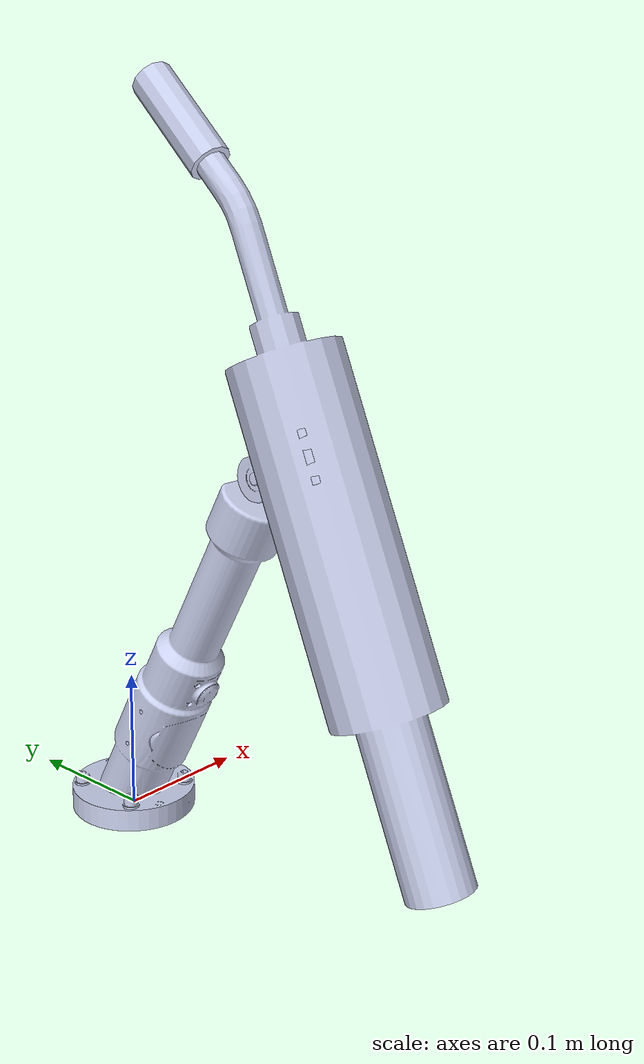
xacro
<?xml version="1.0" ?>
<robot name="$(arg name)" xmlns:xacro="http://ros.org/wiki/xacro">

    <!-- import macros -->
    <xacro:include filename="$(find alpaka_welding_gun_description)/urdf/welding_gun_macro.xacro"/>

    <!-- robot name parameter -->
    <xacro:arg name="name" default="welding_gun"/>

    <!-- parameters -->
    <xacro:arg name="prefix" default="" />
    <xacro:arg name="clamp_angle" default="0" />
    <xacro:arg name="tourch_tilt" default="0" />

    <!-- create base link -->
    <link name="base_link"/>

    <!-- chassis -->
    <xacro:welding_gun prefix="$(arg prefix)" parent="base_link" clamp_angle="$(arg clamp_angle)" tourch_tilt="$(arg tourch_tilt)"/>

</robot>

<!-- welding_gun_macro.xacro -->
<robot xmlns:xacro="http://wiki.ros.org/xacro">

	<xacro:macro name="welding_gun" params="
		prefix
		parent
		clamp_angle
		tourch_tilt">

		<!--Link definitions-->
		<link name="${prefix}welding_gun_mount_link">
			<visual>
				<origin xyz="0 0 0" rpy="0 0 0" />
				<geometry>
					<mesh filename="package://alpaka_welding_gun_description/meshes/visual/welding_gun_mount_link.STL" />
				</geometry>
				<material name="">
					<color rgba="0.792156862745098 0.819607843137255 0.933333333333333 1" />
				</material>
			</visual>
			<collision>
				<origin xyz="0 0 0" rpy="0 0 0" />
				<geometry>
					<mesh filename="package://alpaka_welding_gun_description/meshes/collision/welding_gun_mount_link_collision.STL" />
				</geometry>
			</collision>
		</link>

		<link name="${prefix}welding_gun_clamp_link">
			<visual>
				<origin xyz="0 0 0" rpy="0 0 0" />
				<geometry>
					<mesh filename="package://alpaka_welding_gun_description/meshes/visual/welding_gun_clamp_link.STL" />
				</geometry>
				<material name="">
					<color rgba="0.792156862745098 0.819607843137255 0.933333333333333 1" />
				</material>
			</visual>
			<collision>
				<origin xyz="0 0 0" rpy="0 0 0" />
				<geometry>
					<mesh filename="package://alpaka_welding_gun_description/meshes/collision/welding_gun_clamp_link_collision.STL" />
				</geometry>
			</collision>
		</link>

		<link name="${prefix}welding_gun_tourch_link">
			<visual>
				<origin xyz="0 0 0" rpy="0 0 0" />
				<geometry>
					<mesh filename="package://alpaka_welding_gun_description/meshes/visual/welding_gun_tourch_link.STL" />
				</geometry>
				<material name="">
					<color rgba="0.792156862745098 0.819607843137255 0.933333333333333 1" />
				</material>
			</visual>
			<collision>
				<origin xyz="0 0 0" rpy="0 0 0" />
				<geometry>
					<mesh filename="package://alpaka_welding_gun_description/meshes/collision/welding_gun_tourch_link_collision.STL" />
				</geometry>
			</collision>
		</link>

		<link name="${prefix}welding_gun_nozzle_link">
		</link>

		<!--Joint  definitions-->

		<joint name="${prefix}welding_gun_parent-mount_joint" type="fixed">
			<parent link="${parent}"/>
			<child link="${prefix}welding_gun_mount_link"/>
			<origin xyz="0 0 0" rpy="0 0 0"/>
		</joint>

		<joint name="${prefix}welding_gun_mount-clamp_joint" type="fixed">
			<parent link="${prefix}welding_gun_mount_link"/>
			<child link="${prefix}welding_gun_clamp_link"/>
			<origin xyz="0 -0.132832909582717 0.271179184756591" rpy="${-0.392699082+clamp_angle} 0 0"/>
		</joint>

		<joint name="${prefix}welding_gun_clamp-tourch_joint" type="fixed">
			<parent link="${prefix}welding_gun_clamp_link" />
			<child link="${prefix}welding_gun_tourch_link" />
			<origin xyz="0 -0.0400000000000015 -0.0150000000000017" rpy="0 0 ${tourch_tilt}" />
		</joint>

		<joint name="${prefix}welding_gun_tourch-nozzle_joint" type="fixed">
			<parent link="${prefix}welding_gun_tourch_link" />
			<child link="${prefix}welding_gun_nozzle_link" />
			<origin xyz="0.000638333791648683 0.0423667104625367 0.278295395140913" rpy="-0.392699081698696 0 0" />
		</joint>

	</xacro:macro>
</robot>
